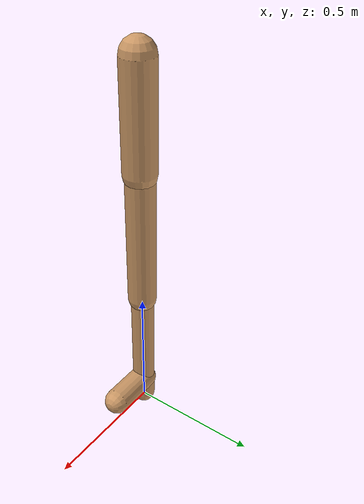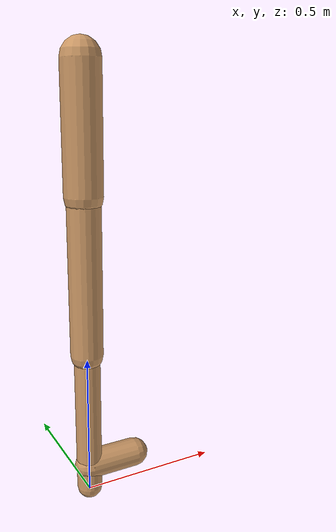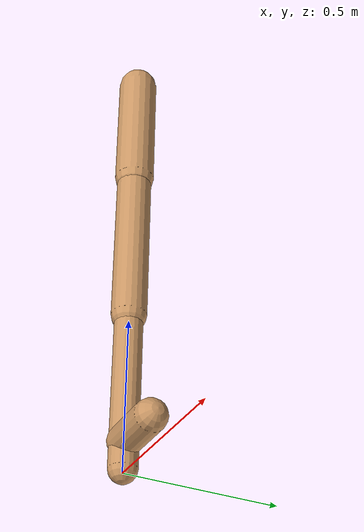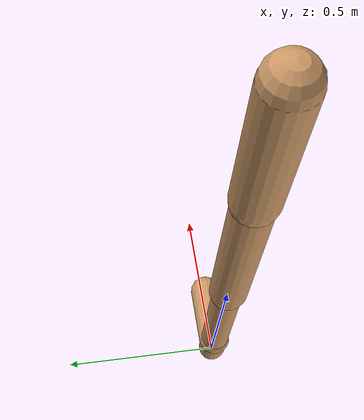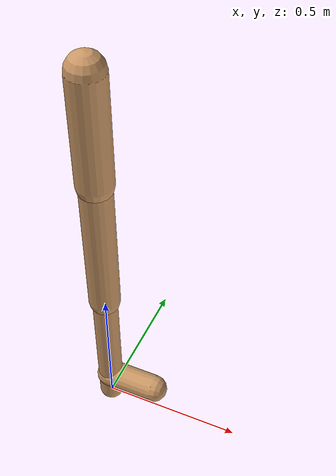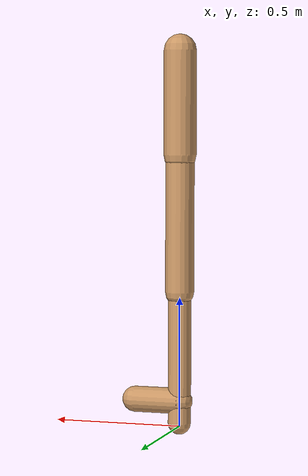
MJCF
<mujoco model="walker2d">
  <compiler angle="degree" coordinate="global" inertiafromgeom="true" />
  <default>
    <joint armature="0.01" damping=".1" limited="true" />
    <geom conaffinity="0" condim="3" contype="1" density="1000" friction="0.8 .1 .1" rgba="0.8 0.6 .4 1" />
  </default>
  <option integrator="RK4" timestep="0.002" />
  <worldbody>

    <body name="torso" pos="0 0 0.16343956906487808">
      <joint armature="0" axis="1 0 0" damping="0" limited="false" name="ignorex" pos="0 0 0" stiffness="0" type="slide" />
      <joint armature="0" axis="0 0 1" damping="0" limited="false" name="ignorez" pos="0 0 0" ref="1.25" stiffness="0" type="slide" />
      <joint armature="0" axis="0 1 0" damping="0" limited="false" name="ignorey" pos="0 0 0" stiffness="0" type="hinge" />
      <geom fromto="0 0 1.45 0 0 1.05" name="torso_geom" size="0.06282025379753664" type="capsule" />
      <body name="thigh">
        <joint axis="0 -1 0" name="thigh_joint" pos="0 0 1.05" range="-150 0" type="hinge" />
        <geom fromto="0.0 0.0 1.05 0.0 0.0 0.5225812567587419" name="thigh_geom" size="0.05539186067185911" type="capsule" />
        <body name="leg" pos="0.0 0.0 -0.07741874324125808">
          <joint axis="0 -1 0" name="leg_joint" pos="0 0 0.6" range="-150 0" type="hinge" />
          <geom fromto="0.0 0.0 0.6 0.0 0.0 0.013979174176379963" name="leg_geom" size="0.04431348853748728" type="capsule" />
          <body name="foot" pos="0.0 0.0 -0.08602082582362004">
            <joint axis="0 -1 0" name="foot_joint" pos="0 0 0.1" range="-45 45" type="hinge" />
            <geom fromto="0.0 0.0 0.1 0.1777710215208563 0.0 0.1" name="foot_geom" size="0.05041676863193081" type="capsule" />
          </body>
        </body>
      </body>

      <body name="thigh_left">
        <joint axis="0 -1 0" name="thigh_left_joint" pos="0 0 1.05" range="-150 0" type="hinge" />
        <geom fromto="0.0 0.0 1.05 0.0 0.0 0.5225812567587419" name="thigh_left_geom" rgba=".7 .3 .6 1" size="0.05539186067185911" type="capsule" />
        <body name="leg_left" pos="0.0 0.0 -0.07741874324125808">
          <joint axis="0 -1 0" name="leg_left_joint" pos="0 0 0.6" range="-150 0" type="hinge" />
          <geom fromto="0.0 0.0 0.6 0.0 0.0 0.013979174176379963" name="leg_left_geom" rgba=".7 .3 .6 1" size="0.04431348853748728" type="capsule" />
          <body name="foot_left" pos="0.0 0.0 -0.08602082582362004">
            <joint axis="0 -1 0" name="foot_left_joint" pos="0 0 0.1" range="-45 45" type="hinge" />
            <geom fromto="0.0 0.0 0.1 0.1777710215208563 0.0 0.1" name="foot_left_geom" rgba=".7 .3 .6 1" size="0.05041676863193081" type="capsule" />
          </body>
        </body>
      </body>
    </body>
  </worldbody>
  <actuator>

    <motor ctrllimited="true" ctrlrange="-1.0 1.0" gear="100" joint="thigh_joint" />
    <motor ctrllimited="true" ctrlrange="-1.0 1.0" gear="100" joint="leg_joint" />
    <motor ctrllimited="true" ctrlrange="-1.0 1.0" gear="100" joint="foot_joint" />
    <motor ctrllimited="true" ctrlrange="-1.0 1.0" gear="100" joint="thigh_left_joint" />
    <motor ctrllimited="true" ctrlrange="-1.0 1.0" gear="100" joint="leg_left_joint" />
    <motor ctrllimited="true" ctrlrange="-1.0 1.0" gear="100" joint="foot_left_joint" />

  </actuator>
</mujoco>
